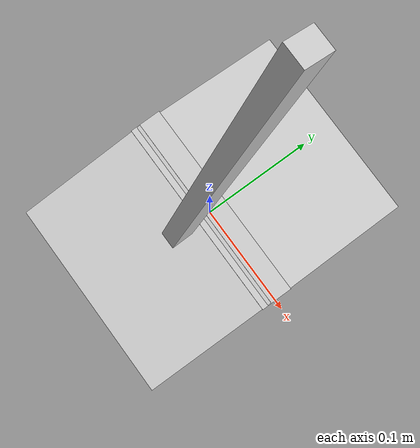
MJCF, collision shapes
<mujoco model="wine_rack_stand">
  <asset>
  <texture file="mahogany.png" name="tex-wine_rack_stand" type="2d" />
  <material name="wine_rack_stand" reflectance="0.5" texrepeat="1 1" texture="tex-wine_rack_stand" texuniform="false" />
  <mesh file="visual/wine_rack_stand_vis.msh" name="wine_rack_stand_vis" scale="0.0045 0.0045 0.0045" /></asset>
  <worldbody>
    <body>
      <body name="object">
      <geom solimp="0.998 0.998 0.001" solref="0.001 1" density="100" friction="0.95 0.3 0.1" type="mesh" mesh="wine_rack_stand_vis" conaffinity="0" contype="0" group="1" material="wine_rack_stand" /><geom solimp="0.998 0.998 0.001" solref="0.001 1" density="100" friction="0.95 0.3 0.1" type="box" pos="-0.00000 0.00000 0.00657" quat="0.50000 -0.50000 0.50000 0.50000" size="0.00450 0.06646 0.09302" group="0" rgba="0.8 0.8 0.8 0.3" /><geom solimp="0.998 0.998 0.001" solref="0.001 1" density="100" friction="0.95 0.3 0.1" type="box" pos="-0.00000 0.06935 0.01006" quat="0.70560 -0.04613 -0.70560 0.04613" size="0.00447 0.06004 0.08995" group="0" rgba="0.8 0.8 0.8 0.3" /><geom solimp="0.998 0.998 0.001" solref="0.001 1" density="100" friction="0.95 0.3 0.1" type="box" pos="-0.00000 -0.06430 0.01263" quat="0.04959 -0.70537 -0.04959 0.70537" size="0.00447 0.06004 0.08995" group="0" rgba="0.8 0.8 0.8 0.3" /><geom solimp="0.998 0.998 0.001" solref="0.001 1" density="100" friction="0.95 0.3 0.1" type="box" pos="0.00000 0.00000 0.02050" quat="0.70711 0.00000 0.70711 0.00000" size="0.00450 0.01410 0.09045" group="0" rgba="0.8 0.8 0.8 0.3" /><geom solimp="0.998 0.998 0.001" solref="0.001 1" density="100" friction="0.95 0.3 0.1" type="box" pos="-0.00000 0.00886 0.17026" quat="0.00000 0.00000 -0.13781 -0.99046" size="0.00762 0.00905 0.16165" group="0" rgba="0.8 0.8 0.8 0.3" /></body>
      <site rgba="0 0 0 0" size="0.005" pos="0 0 -0.06" name="bottom_site" />
      <site rgba="0 0 0 0" size="0.005" pos="0 0 0.04" name="top_site" />
      <site rgba="0 0 0 0" size="0.005" pos="0.025 0.025 0" name="horizontal_radius_site" />
    </body>
  </worldbody>
</mujoco>
